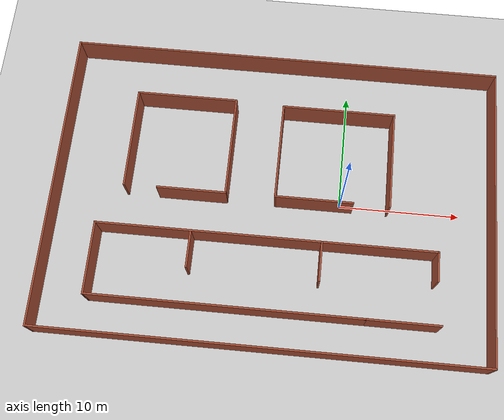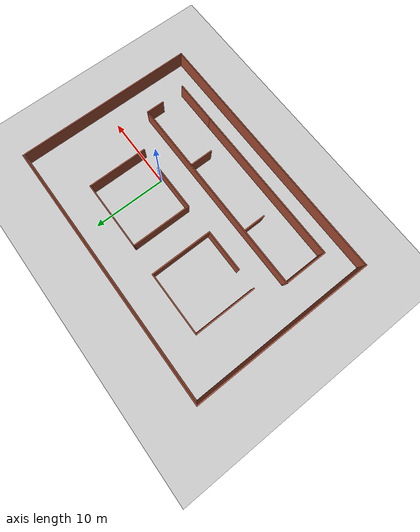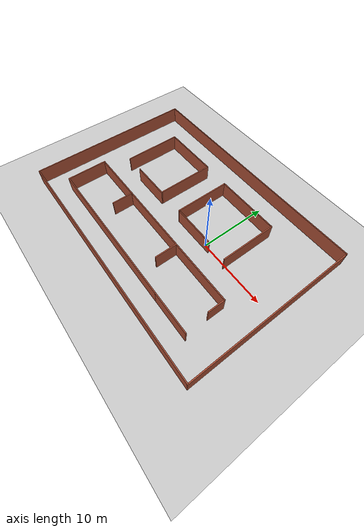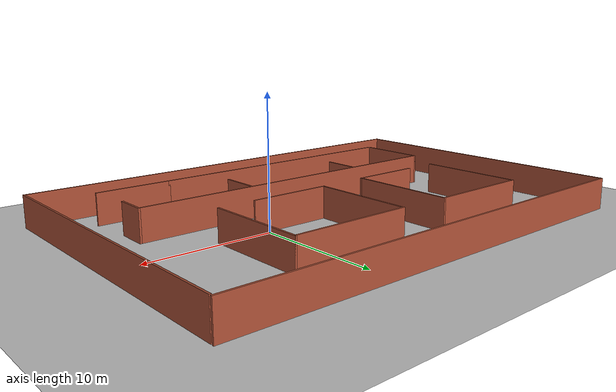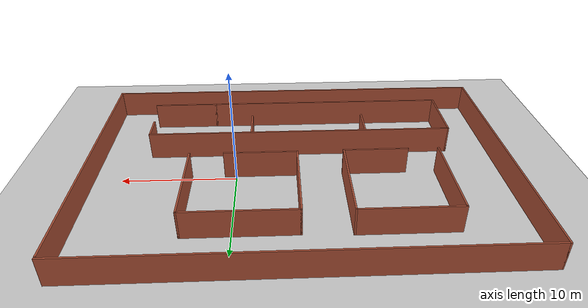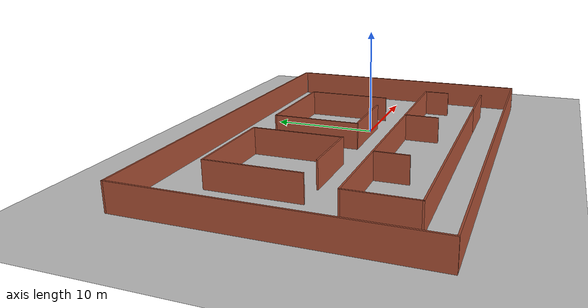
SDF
<sdf version="1.6">
 <world name="default">
  <light name="sun" type="directional">
   <pose>0 0 10 0 -0 0</pose>
   <diffuse>0.8 0.8 0.8 1</diffuse>
   <specular>0.1 0.1 0.1 1</specular>
   <attenuation>
    <range>1000</range>
    <constant>0.9</constant>
    <linear>0.01</linear>
    <quadratic>0.001</quadratic>
   </attenuation>
   <direction>-0.5 0.5 -1</direction>
  </light>
  <model name="ground_plane">
   <static>1</static>
   <link name="link">
    <collision name="collision">
     <geometry><plane><normal>0 0 1</normal><size>100 100</size></plane></geometry>
     <surface><friction><ode><mu>100</mu><mu2>50</mu2></ode></friction></surface>
    </collision>
    <visual name="visual">
     <cast_shadows>0</cast_shadows>
     <geometry><plane><normal>0 0 1</normal><size>100 100</size></plane></geometry>
     <material>
      <script><uri>file://media/materials/scripts/gazebo.material</uri><name>Gazebo/Grey</name></script>
     </material>
    </visual>
   </link>
  </model>
  <gravity>0 0 -9.8</gravity>
  <magnetic_field>6e-06 2.3e-05 -4.2e-05</magnetic_field>
  <atmosphere type="adiabatic"/>
  <physics name="default_physics" default="0" type="ode">
   <max_step_size>0.001</max_step_size>
   <real_time_factor>1</real_time_factor>
   <real_time_update_rate>1000</real_time_update_rate>
  </physics>
  <scene><ambient>0.4 0.4 0.4 1</ambient><background>0.7 0.7 0.7 1</background><shadows>1</shadows></scene>
  <spherical_coordinates>
   <surface_model>EARTH_WGS84</surface_model>
   <latitude_deg>0</latitude_deg>
   <longitude_deg>0</longitude_deg>
   <elevation>0</elevation>
   <heading_deg>0</heading_deg>
  </spherical_coordinates>
  <model name="map_test">
   <pose>-5.56833 -0.17138 0 0 -0 0</pose>
   <link name="Wall_1">
    <collision name="Wall_1_Collision">
     <geometry><box><size>25 0.15 2.5</size></box></geometry>
     <pose>0 0 1.25 0 -0 0</pose>
    </collision>
    <visual name="Wall_1_Visual">
     <pose>0 0 1.25 0 -0 0</pose>
     <geometry><box><size>25 0.15 2.5</size></box></geometry>
     <material>
      <script><uri>file://media/materials/scripts/gazebo.material</uri><name>Gazebo/Bricks</name></script>
      <ambient>1 1 1 1</ambient>
     </material>
    </visual>
    <pose>-18.05 0 0 0 0 -1.5708</pose>
   </link>
   <link name="Wall_11">
    <collision name="Wall_11_Collision">
     <geometry><box><size>36.25 0.15 2.5</size></box></geometry>
     <pose>0 0 1.25 0 -0 0</pose>
    </collision>
    <visual name="Wall_11_Visual">
     <pose>0 0 1.25 0 -0 0</pose>
     <geometry><box><size>36.25 0.15 2.5</size></box></geometry>
     <material>
      <script><uri>file://media/materials/scripts/gazebo.material</uri><name>Gazebo/Bricks</name></script>
      <ambient>1 1 1 1</ambient>
     </material>
    </visual>
    <pose>-1e-06 12.425 0 0 -0 0</pose>
   </link>
   <link name="Wall_2">
    <collision name="Wall_2_Collision">
     <geometry><box><size>36.25 0.15 2.5</size></box></geometry>
     <pose>0 0 1.25 0 -0 0</pose>
    </collision>
    <visual name="Wall_2_Visual">
     <pose>0 0 1.25 0 -0 0</pose>
     <geometry><box><size>36.25 0.15 2.5</size></box></geometry>
     <material>
      <script><uri>file://media/materials/scripts/gazebo.material</uri><name>Gazebo/Bricks</name></script>
      <ambient>1 1 1 1</ambient>
     </material>
    </visual>
    <pose>-1e-06 -12.425 0 0 -0 0</pose>
   </link>
   <link name="Wall_3">
    <collision name="Wall_3_Collision">
     <geometry><box><size>24.75 0.15 2.5</size></box></geometry>
     <pose>0 0 1.25 0 -0 0</pose>
    </collision>
    <visual name="Wall_3_Visual">
     <pose>0 0 1.25 0 -0 0</pose>
     <geometry><box><size>24.75 0.15 2.5</size></box></geometry>
     <material>
      <script><uri>file://media/materials/scripts/gazebo.material</uri><name>Gazebo/Bricks</name></script>
      <ambient>1 1 1 1</ambient>
     </material>
    </visual>
    <pose>18.05 -0.125 0 0 -0 1.5708</pose>
   </link>
   <link name="Wall_30">
    <collision name="Wall_30_Collision">
     <geometry><box><size>8.5 0.15 2.5</size></box></geometry>
     <pose>0 0 1.25 0 -0 0</pose>
    </collision>
    <visual name="Wall_30_Visual">
     <pose>0 0 1.25 0 -0 0</pose>
     <geometry><box><size>8.5 0.15 2.5</size></box></geometry>
     <material>
      <script><uri>file://media/materials/scripts/gazebo.material</uri><name>Gazebo/Bricks</name></script>
      <ambient>1 1 1 1</ambient>
     </material>
    </visual>
    <pose>-3.88387 3.92308 0 0 0 -1.5708</pose>
   </link>
   <link name="Wall_40">
    <collision name="Wall_40_Collision">
     <geometry><box><size>6 0.15 2.5</size></box></geometry>
     <pose>0 0 1.25 0 -0 0</pose>
    </collision>
    <visual name="Wall_40_Visual">
     <pose>0 0 1.25 0 -0 0</pose>
     <geometry><box><size>6 0.15 2.5</size></box></geometry>
     <material>
      <script><uri>file://media/materials/scripts/gazebo.material</uri><name>Gazebo/Bricks</name></script>
      <ambient>1 1 1 1</ambient>
     </material>
    </visual>
    <pose>-14.0467 -6.61752 0 0 0 -1.5708</pose>
   </link>
   <link name="Wall_41">
    <collision name="Wall_41_Collision">
     <geometry><box><size>22.25 0.15 2.5</size></box></geometry>
     <pose>0 0 1.25 0 -0 0</pose>
    </collision>
    <visual name="Wall_41_Visual">
     <pose>0 0 1.25 0 -0 0</pose>
     <geometry><box><size>22.25 0.15 2.5</size></box></geometry>
     <material>
      <script><uri>file://media/materials/scripts/gazebo.material</uri><name>Gazebo/Bricks</name></script>
      <ambient>1 1 1 1</ambient>
     </material>
    </visual>
    <pose>-2.99672 -9.54252 0 0 -0 0</pose>
   </link>
   <link name="Wall_44">
    <collision name="Wall_44_Collision">
     <geometry><box><size>6 0.15 2.5</size></box></geometry>
     <pose>0 0 1.25 0 -0 0</pose>
    </collision>
    <visual name="Wall_44_Visual">
     <pose>0 0 1.25 0 -0 0</pose>
     <geometry><box><size>6 0.15 2.5</size></box></geometry>
     <material>
      <script><uri>file://media/materials/scripts/gazebo.material</uri><name>Gazebo/Bricks</name></script>
      <ambient>1 1 1 1</ambient>
     </material>
    </visual>
    <pose>10.9783 -9.54252 0 0 -0 0</pose>
   </link>
   <link name="Wall_54">
    <collision name="Wall_54_Collision">
     <geometry><box><size>8.25 0.15 2.5</size></box></geometry>
     <pose>0 0 1.25 0 -0 0</pose>
    </collision>
    <visual name="Wall_54_Visual">
     <pose>0 0 1.25 0 -0 0</pose>
     <geometry><box><size>8.25 0.15 2.5</size></box></geometry>
     <material>
      <script><uri>file://media/materials/scripts/gazebo.material</uri><name>Gazebo/Bricks</name></script>
      <ambient>1 1 1 1</ambient>
     </material>
    </visual>
    <pose>0.179643 3.86093 0 0 0 -1.5708</pose>
   </link>
   <link name="Wall_64">
    <collision name="Wall_64_Collision">
     <geometry><box><size>9.5 0.15 2.5</size></box></geometry>
     <pose>0 0 1.25 0 -0 0</pose>
    </collision>
    <visual name="Wall_64_Visual">
     <pose>0 0 1.25 0 -0 0</pose>
     <geometry><box><size>9.5 0.15 2.5</size></box></geometry>
     <material>
      <script><uri>file://media/materials/scripts/gazebo.material</uri><name>Gazebo/Bricks</name></script>
      <ambient>1 1 1 1</ambient>
     </material>
    </visual>
    <pose>4.85464 7.91093 0 0 -0 0</pose>
   </link>
   <link name="Wall_65">
    <collision name="Wall_65_Collision">
     <geometry><box><size>8.25 0.15 2.5</size></box></geometry>
     <pose>0 0 1.25 0 -0 0</pose>
    </collision>
    <visual name="Wall_65_Visual">
     <pose>0 0 1.25 0 -0 0</pose>
     <geometry><box><size>8.25 0.15 2.5</size></box></geometry>
     <material>
      <script><uri>file://media/materials/scripts/gazebo.material</uri><name>Gazebo/Bricks</name></script>
      <ambient>1 1 1 1</ambient>
     </material>
    </visual>
    <pose>9.52964 3.86093 0 0 0 -1.5708</pose>
   </link>
   <link name="Wall_67">
    <collision name="Wall_67_Collision">
     <geometry><box><size>6.5 0.15 2.5</size></box></geometry>
     <pose>0 0 1.25 0 -0 0</pose>
    </collision>
    <visual name="Wall_67_Visual">
     <pose>0 0 1.25 0 -0 0</pose>
     <geometry><box><size>6.5 0.15 2.5</size></box></geometry>
     <material>
      <script><uri>file://media/materials/scripts/gazebo.material</uri><name>Gazebo/Bricks</name></script>
      <ambient>1 1 1 1</ambient>
     </material>
    </visual>
    <pose>3.35464 -0.189067 0 0 -0 0</pose>
   </link>
   <link name="Wall_71">
    <collision name="Wall_71_Collision">
     <geometry><box><size>27.75 0.15 2.5</size></box></geometry>
     <pose>0 0 1.25 0 -0 0</pose>
    </collision>
    <visual name="Wall_71_Visual">
     <pose>0 0 1.25 0 -0 0</pose>
     <geometry><box><size>27.75 0.15 2.5</size></box></geometry>
     <material>
      <script><uri>file://media/materials/scripts/gazebo.material</uri><name>Gazebo/Bricks</name></script>
      <ambient>1 1 1 1</ambient>
     </material>
    </visual>
    <pose>-0.246721 -3.69252 0 0 -0 0</pose>
   </link>
   <link name="Wall_72">
    <collision name="Wall_72_Collision">
     <geometry><box><size>2.5 0.15 2.5</size></box></geometry>
     <pose>0 0 1.25 0 -0 0</pose>
    </collision>
    <visual name="Wall_72_Visual">
     <pose>0 0 1.25 0 -0 0</pose>
     <geometry><box><size>2.5 0.15 2.5</size></box></geometry>
     <material>
      <script><uri>file://media/materials/scripts/gazebo.material</uri><name>Gazebo/Bricks</name></script>
      <ambient>1 1 1 1</ambient>
     </material>
    </visual>
    <pose>13.5533 -4.86752 0 0 0 -1.5708</pose>
   </link>
   <link name="Wall_75">
    <collision name="Wall_75_Collision">
     <geometry><box><size>8.5 0.15 2.5</size></box></geometry>
     <pose>0 0 1.25 0 -0 0</pose>
    </collision>
    <visual name="Wall_75_Visual">
     <pose>0 0 1.25 0 -0 0</pose>
     <geometry><box><size>8.5 0.15 2.5</size></box></geometry>
     <material>
      <script><uri>file://media/materials/scripts/gazebo.material</uri><name>Gazebo/Bricks</name></script>
      <ambient>1 1 1 1</ambient>
     </material>
    </visual>
    <pose>-8.05887 8.09808 0 0 -0 3.14159</pose>
   </link>
   <link name="Wall_77">
    <collision name="Wall_77_Collision">
     <geometry><box><size>8.5 0.15 2.5</size></box></geometry>
     <pose>0 0 1.25 0 -0 0</pose>
    </collision>
    <visual name="Wall_77_Visual">
     <pose>0 0 1.25 0 -0 0</pose>
     <geometry><box><size>8.5 0.15 2.5</size></box></geometry>
     <material>
      <script><uri>file://media/materials/scripts/gazebo.material</uri><name>Gazebo/Bricks</name></script>
      <ambient>1 1 1 1</ambient>
     </material>
    </visual>
    <pose>-12.2339 3.92308 0 0 0 -1.5708</pose>
   </link>
   <link name="Wall_79">
    <collision name="Wall_79_Collision">
     <geometry><box><size>5.75 0.15 2.5</size></box></geometry>
     <pose>0 0 1.25 0 -0 0</pose>
    </collision>
    <visual name="Wall_79_Visual">
     <pose>0 0 1.25 0 -0 0</pose>
     <geometry><box><size>5.75 0.15 2.5</size></box></geometry>
     <material>
      <script><uri>file://media/materials/scripts/gazebo.material</uri><name>Gazebo/Bricks</name></script>
      <ambient>1 1 1 1</ambient>
     </material>
    </visual>
    <pose>-6.68387 -0.251915 0 0 -0 3.14159</pose>
   </link>
   <link name="Wall_83">
    <collision name="Wall_83_Collision">
     <geometry><box><size>3 0.15 2.5</size></box></geometry>
     <pose>0 0 1.25 0 -0 0</pose>
    </collision>
    <visual name="Wall_83_Visual">
     <pose>0 0 1.25 0 -0 0</pose>
     <geometry><box><size>3 0.15 2.5</size></box></geometry>
     <material>
      <script><uri>file://media/materials/scripts/gazebo.material</uri><name>Gazebo/Bricks</name></script>
      <ambient>1 1 1 1</ambient>
     </material>
    </visual>
    <pose>-6.28658 -5.26021 0 0 0 -1.5708</pose>
   </link>
   <link name="Wall_86">
    <collision name="Wall_86_Collision">
     <geometry><box><size>3.25 0.15 2.5</size></box></geometry>
     <pose>0 0 1.25 0 -0 0</pose>
    </collision>
    <visual name="Wall_86_Visual">
     <pose>0 0 1.25 0 -0 0</pose>
     <geometry><box><size>3.25 0.15 2.5</size></box></geometry>
     <material>
      <script><uri>file://media/materials/scripts/gazebo.material</uri><name>Gazebo/Bricks</name></script>
      <ambient>1 1 1 1</ambient>
     </material>
    </visual>
    <pose>4.25946 -5.2776 0 0 0 -1.5708</pose>
   </link>
   <static>1</static>
  </model>
 </world>
</sdf>
